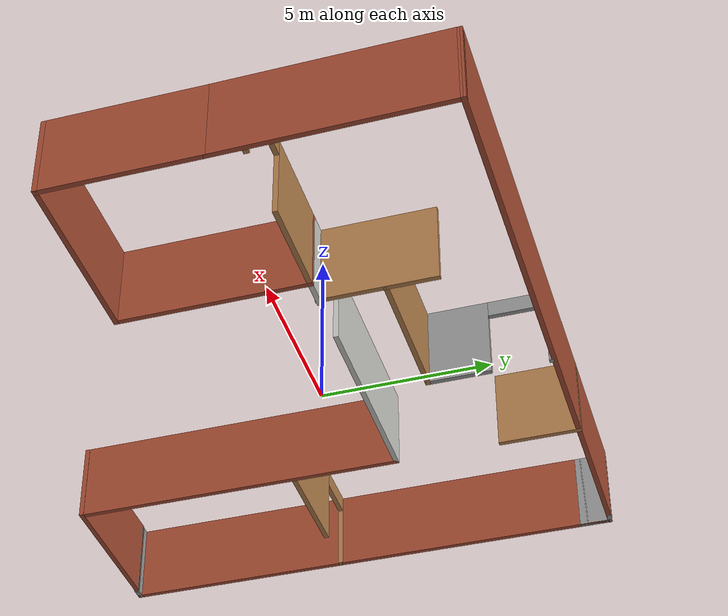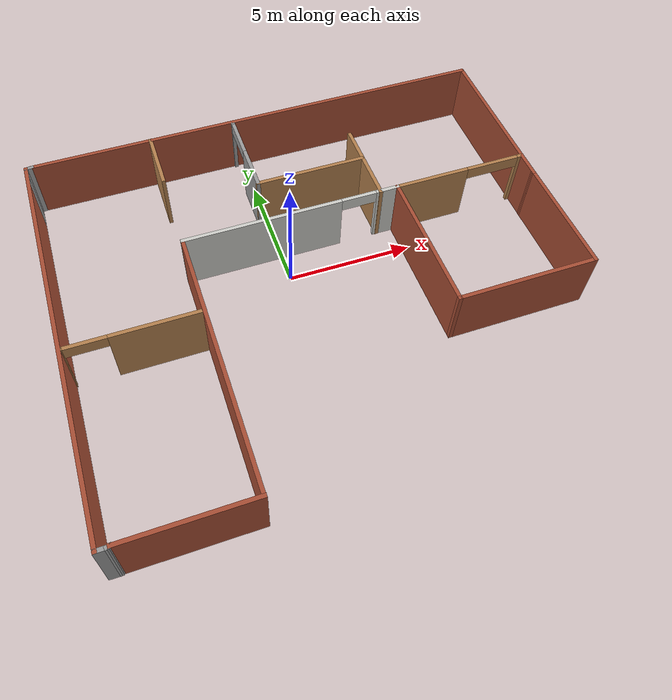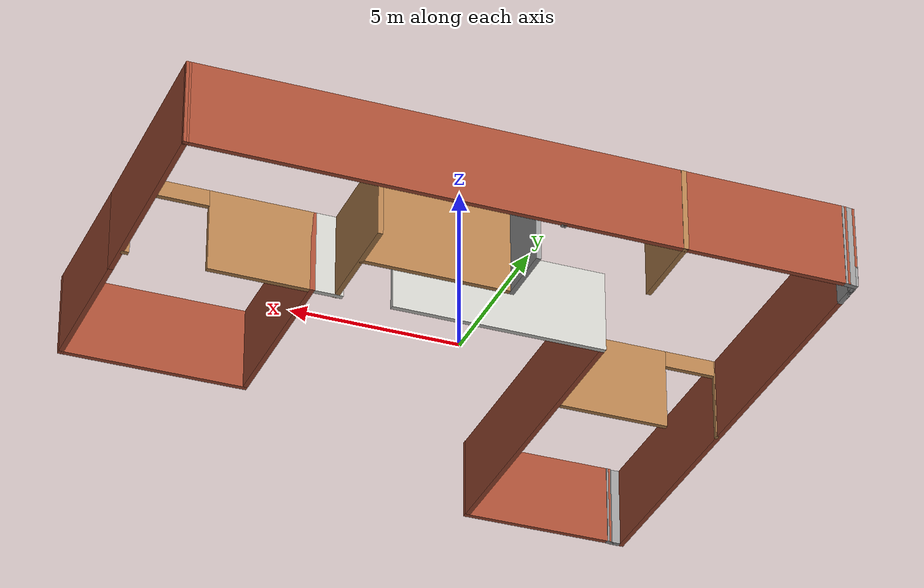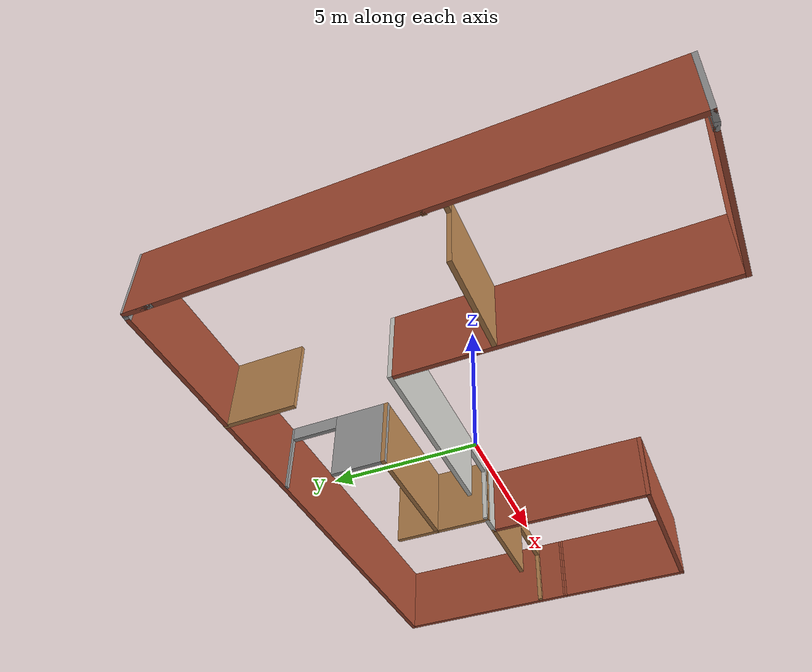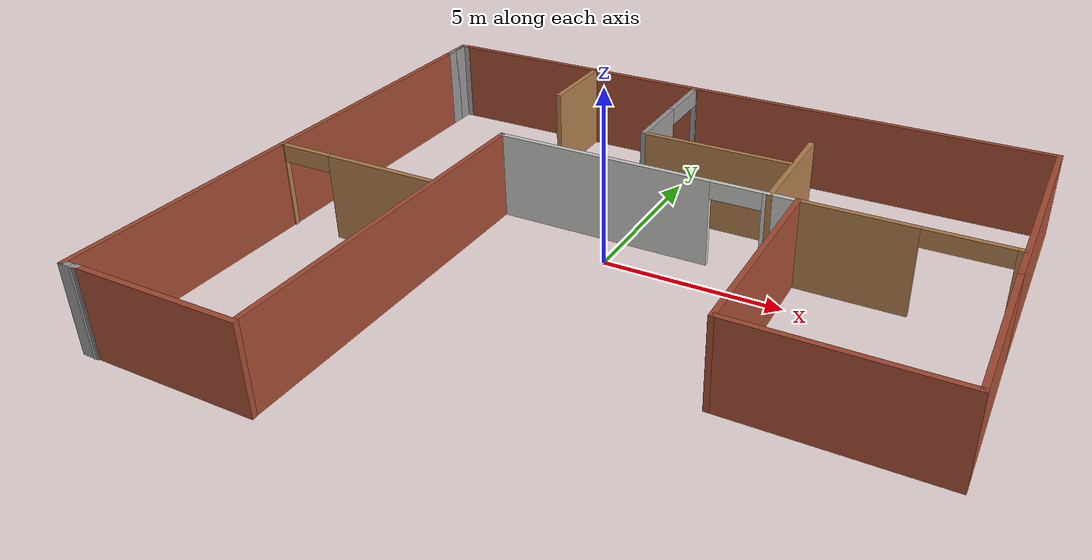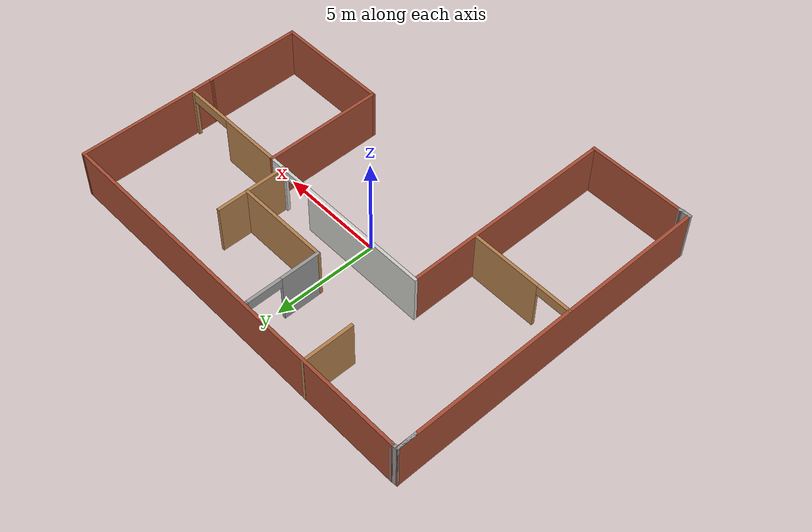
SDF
<?xml version='1.0'?>
<sdf version='1.6'>
  <model name='Building'>
    <pose frame=''>0.689658 -1.17716 0 0 -0 0</pose>
    <link name='Wall_46'>
      <collision name='Wall_46_Collision'>
        <geometry>
          <box>
            <size>19 0.15 2.5</size>
          </box>
        </geometry>
        <pose frame=''>0 0 1.25 0 -0 0</pose>
      </collision>
      <visual name='Wall_46_Visual'>
        <pose frame=''>0 0 1.25 0 -0 0</pose>
        <geometry>
          <box>
            <size>19 0.15 2.5</size>
          </box>
        </geometry>
        <material>
          <script>
            <uri>file://media/materials/scripts/gazebo.material</uri>
            <name>Gazebo/Bricks</name>
          </script>
          <ambient>1 1 1 1</ambient>
        </material>
        <meta>
          <layer>0</layer>
        </meta>
      </visual>
      <pose frame=''>0.126715 7.94172 0 0 -0 0</pose>
    </link>
    <link name='Wall_48'>
      <collision name='Wall_48_Collision'>
        <geometry>
          <box>
            <size>6.75 0.15 2.5</size>
          </box>
        </geometry>
        <pose frame=''>0 0 1.25 0 -0 0</pose>
      </collision>
      <visual name='Wall_48_Visual'>
        <pose frame=''>0 0 1.25 0 -0 0</pose>
        <geometry>
          <box>
            <size>6.75 0.15 2.5</size>
          </box>
        </geometry>
        <material>
          <script>
            <uri>file://media/materials/scripts/gazebo.material</uri>
            <name>Gazebo/Bricks</name>
          </script>
          <ambient>1 1 1 1</ambient>
        </material>
        <meta>
          <layer>0</layer>
        </meta>
      </visual>
      <pose frame=''>9.52607 4.64172 0 0 0 -1.57857</pose>
    </link>
    <link name='Wall_57'>
      <collision name='Wall_57_Collision'>
        <geometry>
          <box>
            <size>4.75 0.15 2.5</size>
          </box>
        </geometry>
        <pose frame=''>0 0 1.25 0 -0 0</pose>
      </collision>
      <visual name='Wall_57_Visual'>
        <pose frame=''>0 0 1.25 0 -0 0</pose>
        <geometry>
          <box>
            <size>4.75 0.15 2.5</size>
          </box>
        </geometry>
        <material>
          <script>
            <uri>file://media/materials/scripts/gazebo.material</uri>
            <name>Gazebo/Bricks</name>
          </script>
          <ambient>1 1 1 1</ambient>
        </material>
        <meta>
          <layer>0</layer>
        </meta>
      </visual>
      <pose frame=''>-6.79828 -7.90828 0 0 -0 3.14159</pose>
    </link>
    <link name='Wall_58'>
      <collision name='Wall_58_Collision'>
        <geometry>
          <box>
            <size>0.25 0.15 2.5</size>
          </box>
        </geometry>
        <pose frame=''>0 0 1.25 0 -0 0</pose>
      </collision>
      <visual name='Wall_58_Visual'>
        <pose frame=''>0 0 1.25 0 -0 0</pose>
        <geometry>
          <box>
            <size>0.25 0.15 2.5</size>
          </box>
        </geometry>
        <material>
          <script>
            <uri>file://media/materials/scripts/gazebo.material</uri>
            <name>Gazebo/Grey</name>
          </script>
          <ambient>1 1 1 1</ambient>
        </material>
        <meta>
          <layer>0</layer>
        </meta>
      </visual>
      <pose frame=''>-9.14658 -7.92122 0 0 0 -2.87979</pose>
    </link>
    <link name='Wall_59'>
      <collision name='Wall_59_Collision'>
        <geometry>
          <box>
            <size>0.5 0.15 2.5</size>
          </box>
        </geometry>
        <pose frame=''>0 0 1.25 0 -0 0</pose>
      </collision>
      <visual name='Wall_59_Visual'>
        <pose frame=''>0 0 1.25 0 -0 0</pose>
        <geometry>
          <box>
            <size>0.5 0.15 2.5</size>
          </box>
        </geometry>
        <material>
          <script>
            <uri>file://media/materials/scripts/gazebo.material</uri>
            <name>Gazebo/Grey</name>
          </script>
          <ambient>1 1 1 1</ambient>
        </material>
        <meta>
          <layer>0</layer>
        </meta>
      </visual>
      <pose frame=''>-9.36988 -7.93416 0 0 -0 3.14159</pose>
    </link>
    <link name='Wall_60'>
      <collision name='Wall_60_Collision'>
        <geometry>
          <box>
            <size>16 0.15 2.5</size>
          </box>
        </geometry>
        <pose frame=''>0 0 1.25 0 -0 0</pose>
      </collision>
      <visual name='Wall_60_Visual'>
        <pose frame=''>0 0 1.25 0 -0 0</pose>
        <geometry>
          <box>
            <size>16 0.15 2.5</size>
          </box>
        </geometry>
        <material>
          <script>
            <uri>file://media/materials/scripts/gazebo.material</uri>
            <name>Gazebo/Bricks</name>
          </script>
          <ambient>1 1 1 1</ambient>
        </material>
        <meta>
          <layer>0</layer>
        </meta>
      </visual>
      <pose frame=''>-9.54488 -0.009158 0 0 -0 1.5708</pose>
    </link>
    <link name='Wall_62'>
      <collision name='Wall_62_Collision'>
        <geometry>
          <box>
            <size>0.397947 0.15 2.5</size>
          </box>
        </geometry>
        <pose frame=''>0 0 1.25 0 -0 0</pose>
      </collision>
      <visual name='Wall_62_Visual'>
        <pose frame=''>0 0 1.25 0 -0 0</pose>
        <geometry>
          <box>
            <size>0.397947 0.15 2.5</size>
          </box>
        </geometry>
        <material>
          <script>
            <uri>file://media/materials/scripts/gazebo.material</uri>
            <name>Gazebo/Grey</name>
          </script>
          <ambient>1 1 1 1</ambient>
        </material>
        <meta>
          <layer>0</layer>
        </meta>
      </visual>
      <pose frame=''>-9.42158 7.92878 0 0 0 -3.03702</pose>
    </link>
    <link name='Wall_63'>
      <collision name='Wall_63_Collision'>
        <geometry>
          <box>
            <size>1 0.15 2.5</size>
          </box>
        </geometry>
        <pose frame=''>0 0 1.25 0 -0 0</pose>
      </collision>
      <visual name='Wall_63_Visual'>
        <pose frame=''>0 0 1.25 0 -0 0</pose>
        <geometry>
          <box>
            <size>1 0.15 2.5</size>
          </box>
        </geometry>
        <material>
          <script>
            <uri>file://media/materials/scripts/gazebo.material</uri>
            <name>Gazebo/Grey</name>
          </script>
          <ambient>1 1 1 1</ambient>
        </material>
        <meta>
          <layer>0</layer>
        </meta>
      </visual>
      <pose frame=''>-9.54488 7.49084 0 0 0 -1.5708</pose>
    </link>
    <link name='Wall_64'>
      <collision name='Wall_64_Collision'>
        <geometry>
          <box>
            <size>1 0.15 2.5</size>
          </box>
        </geometry>
        <pose frame=''>0 0 1.25 0 -0 0</pose>
      </collision>
      <visual name='Wall_64_Visual'>
        <pose frame=''>0 0 1.25 0 -0 0</pose>
        <geometry>
          <box>
            <size>1 0.15 2.5</size>
          </box>
        </geometry>
        <material>
          <script>
            <uri>file://media/materials/scripts/gazebo.material</uri>
            <name>Gazebo/Grey</name>
          </script>
          <ambient>1 1 1 1</ambient>
        </material>
        <meta>
          <layer>0</layer>
        </meta>
      </visual>
      <pose frame=''>-9.54488 7.49084 0 0 -0 1.5708</pose>
    </link>
    <link name='Wall_66'>
      <collision name='Wall_66_Collision'>
        <geometry>
          <box>
            <size>4.75 0.15 2.5</size>
          </box>
        </geometry>
        <pose frame=''>0 0 1.25 0 -0 0</pose>
      </collision>
      <visual name='Wall_66_Visual'>
        <pose frame=''>0 0 1.25 0 -0 0</pose>
        <geometry>
          <box>
            <size>4.75 0.15 2.5</size>
          </box>
        </geometry>
        <material>
          <script>
            <uri>file://media/materials/scripts/gazebo.material</uri>
            <name>Gazebo/Bricks</name>
          </script>
          <ambient>1 1 1 1</ambient>
        </material>
        <meta>
          <layer>0</layer>
        </meta>
      </visual>
      <pose frame=''>9.50042 -0.958277 0 0 0 -1.5708</pose>
    </link>
    <link name='Wall_67'>
      <collision name='Wall_67_Collision'>
        <geometry>
          <box>
            <size>5.55818 0.15 2.5</size>
          </box>
        </geometry>
        <pose frame=''>0 0 1.25 0 -0 0</pose>
      </collision>
      <visual name='Wall_67_Visual'>
        <pose frame=''>0 0 1.25 0 -0 0</pose>
        <geometry>
          <box>
            <size>5.55818 0.15 2.5</size>
          </box>
        </geometry>
        <material>
          <script>
            <uri>file://media/materials/scripts/gazebo.material</uri>
            <name>Gazebo/Bricks</name>
          </script>
          <ambient>1 1 1 1</ambient>
        </material>
        <meta>
          <layer>0</layer>
        </meta>
      </visual>
      <pose frame=''>6.79633 -3.25828 0 0 -0 3.14159</pose>
    </link>
    <link name='Wall_73'>
      <collision name='Wall_73_Collision'>
        <geometry>
          <box>
            <size>5.75 0.15 2.5</size>
          </box>
        </geometry>
        <pose frame=''>0 0 1.25 0 -0 0</pose>
      </collision>
      <visual name='Wall_73_Visual'>
        <pose frame=''>0 0 1.25 0 -0 0</pose>
        <geometry>
          <box>
            <size>5.75 0.15 2.5</size>
          </box>
        </geometry>
        <material>
          <script>
            <uri>file://media/materials/scripts/gazebo.material</uri>
            <name>Gazebo/Bricks</name>
          </script>
          <ambient>1 1 1 1</ambient>
        </material>
        <meta>
          <layer>0</layer>
        </meta>
      </visual>
      <pose frame=''>4.09224 -0.458277 0 0 -0 1.5708</pose>
    </link>
    <link name='Wall_74'>
      <pose frame=''>-0.207759 2.34172 0 0 -0 3.14159</pose>
      <visual name='Wall_74_Visual_0'>
        <pose frame=''>-3.88634 0 1.25 0 -0 0</pose>
        <geometry>
          <box>
            <size>0.977324 0.15 2.5</size>
          </box>
        </geometry>
        <material>
          <script>
            <uri>file://media/materials/scripts/gazebo.material</uri>
            <name>Gazebo/CeilingTiled</name>
          </script>
          <ambient>1 1 1 1</ambient>
        </material>
        <meta>
          <layer>0</layer>
        </meta>
      </visual>
      <collision name='Wall_74_Collision_0'>
        <geometry>
          <box>
            <size>0.977324 0.15 2.5</size>
          </box>
        </geometry>
        <pose frame=''>-3.88634 0 1.25 0 -0 0</pose>
      </collision>
      <visual name='Wall_74_Visual_1'>
        <pose frame=''>1.19711 0 1.25 0 -0 0</pose>
        <geometry>
          <box>
            <size>6.35579 0.15 2.5</size>
          </box>
        </geometry>
        <material>
          <script>
            <uri>file://media/materials/scripts/gazebo.material</uri>
            <name>Gazebo/CeilingTiled</name>
          </script>
          <ambient>1 1 1 1</ambient>
        </material>
        <meta>
          <layer>0</layer>
        </meta>
      </visual>
      <collision name='Wall_74_Collision_1'>
        <geometry>
          <box>
            <size>6.35579 0.15 2.5</size>
          </box>
        </geometry>
        <pose frame=''>1.19711 0 1.25 0 -0 0</pose>
      </collision>
      <visual name='Wall_74_Visual_2'>
        <pose frame=''>-2.68923 0 2.25 0 -0 0</pose>
        <geometry>
          <box>
            <size>1.41689 0.15 0.5</size>
          </box>
        </geometry>
        <material>
          <script>
            <uri>file://media/materials/scripts/gazebo.material</uri>
            <name>Gazebo/CeilingTiled</name>
          </script>
          <ambient>1 1 1 1</ambient>
        </material>
        <meta>
          <layer>0</layer>
        </meta>
      </visual>
      <collision name='Wall_74_Collision_2'>
        <geometry>
          <box>
            <size>1.41689 0.15 0.5</size>
          </box>
        </geometry>
        <pose frame=''>-2.68923 0 2.25 0 -0 0</pose>
      </collision>
    </link>
    <link name='Wall_75'>
      <collision name='Wall_75_Collision'>
        <geometry>
          <box>
            <size>10.25 0.15 2.5</size>
          </box>
        </geometry>
        <pose frame=''>0 0 1.25 0 -0 0</pose>
      </collision>
      <visual name='Wall_75_Visual'>
        <pose frame=''>0 0 1.25 0 -0 0</pose>
        <geometry>
          <box>
            <size>10.25 0.15 2.5</size>
          </box>
        </geometry>
        <material>
          <script>
            <uri>file://media/materials/scripts/gazebo.material</uri>
            <name>Gazebo/Bricks</name>
          </script>
          <ambient>1 1 1 1</ambient>
        </material>
        <meta>
          <layer>0</layer>
        </meta>
      </visual>
      <pose frame=''>-4.50776 -2.70828 0 0 0 -1.5708</pose>
    </link>
    <link name='Wall_77'>
      <pose frame=''>6.76724 2.34172 0 0 -0 0</pose>
      <visual name='Wall_77_Visual_0'>
        <pose frame=''>-1.2065 0 1.25 0 -0 0</pose>
        <geometry>
          <box>
            <size>3.08701 0.15 2.5</size>
          </box>
        </geometry>
        <material>
          <script>
            <uri>file://media/materials/scripts/gazebo.material</uri>
            <name>Gazebo/Wood</name>
          </script>
          <ambient>1 1 1 1</ambient>
        </material>
        <meta>
          <layer>0</layer>
        </meta>
      </visual>
      <collision name='Wall_77_Collision_0'>
        <geometry>
          <box>
            <size>3.08701 0.15 2.5</size>
          </box>
        </geometry>
        <pose frame=''>-1.2065 0 1.25 0 -0 0</pose>
      </collision>
      <visual name='Wall_77_Visual_1'>
        <pose frame=''>2.63909 0 1.25 0 -0 0</pose>
        <geometry>
          <box>
            <size>0.221822 0.15 2.5</size>
          </box>
        </geometry>
        <material>
          <script>
            <uri>file://media/materials/scripts/gazebo.material</uri>
            <name>Gazebo/Wood</name>
          </script>
          <ambient>1 1 1 1</ambient>
        </material>
        <meta>
          <layer>0</layer>
        </meta>
      </visual>
      <collision name='Wall_77_Collision_1'>
        <geometry>
          <box>
            <size>0.221822 0.15 2.5</size>
          </box>
        </geometry>
        <pose frame=''>2.63909 0 1.25 0 -0 0</pose>
      </collision>
      <visual name='Wall_77_Visual_2'>
        <pose frame=''>1.43259 0 2.25 0 -0 0</pose>
        <geometry>
          <box>
            <size>2.19117 0.15 0.5</size>
          </box>
        </geometry>
        <material>
          <script>
            <uri>file://media/materials/scripts/gazebo.material</uri>
            <name>Gazebo/Wood</name>
          </script>
          <ambient>1 1 1 1</ambient>
        </material>
        <meta>
          <layer>0</layer>
        </meta>
      </visual>
      <collision name='Wall_77_Collision_2'>
        <geometry>
          <box>
            <size>2.19117 0.15 0.5</size>
          </box>
        </geometry>
        <pose frame=''>1.43259 0 2.25 0 -0 0</pose>
      </collision>
    </link>
    <link name='Wall_85'>
      <collision name='Wall_85_Collision'>
        <geometry>
          <box>
            <size>4.5 0.15 2.5</size>
          </box>
        </geometry>
        <pose frame=''>0 0 1.25 0 -0 0</pose>
      </collision>
      <visual name='Wall_85_Visual'>
        <pose frame=''>0 0 1.25 0 -0 0</pose>
        <geometry>
          <box>
            <size>4.5 0.15 2.5</size>
          </box>
        </geometry>
        <material>
          <script>
            <uri>file://media/materials/scripts/gazebo.material</uri>
            <name>Gazebo/Wood</name>
          </script>
          <ambient>1 1 1 1</ambient>
        </material>
        <meta>
          <layer>0</layer>
        </meta>
      </visual>
      <pose frame=''>1.15991 4.24748 0 0 -0 3.14159</pose>
    </link>
    <link name='Wall_87'>
      <pose frame=''>-1.01509 6.04748 0 0 -0 1.5708</pose>
      <visual name='Wall_87_Visual_0'>
        <pose frame=''>-0.896465 0 1.25 0 -0 0</pose>
        <geometry>
          <box>
            <size>1.95707 0.15 2.5</size>
          </box>
        </geometry>
        <material>
          <script>
            <uri>file://media/materials/scripts/gazebo.material</uri>
            <name>Gazebo/Grey</name>
          </script>
          <ambient>1 1 1 1</ambient>
        </material>
        <meta>
          <layer>0</layer>
        </meta>
      </visual>
      <collision name='Wall_87_Collision_0'>
        <geometry>
          <box>
            <size>1.95707 0.15 2.5</size>
          </box>
        </geometry>
        <pose frame=''>-0.896465 0 1.25 0 -0 0</pose>
      </collision>
      <visual name='Wall_87_Visual_1'>
        <pose frame=''>1.8098 0 1.25 0 -0 0</pose>
        <geometry>
          <box>
            <size>0.130398 0.15 2.5</size>
          </box>
        </geometry>
        <material>
          <script>
            <uri>file://media/materials/scripts/gazebo.material</uri>
            <name>Gazebo/Grey</name>
          </script>
          <ambient>1 1 1 1</ambient>
        </material>
        <meta>
          <layer>0</layer>
        </meta>
      </visual>
      <collision name='Wall_87_Collision_1'>
        <geometry>
          <box>
            <size>0.130398 0.15 2.5</size>
          </box>
        </geometry>
        <pose frame=''>1.8098 0 1.25 0 -0 0</pose>
      </collision>
      <visual name='Wall_87_Visual_2'>
        <pose frame=''>0.913336 0 2.25 0 -0 0</pose>
        <geometry>
          <box>
            <size>1.66253 0.15 0.5</size>
          </box>
        </geometry>
        <material>
          <script>
            <uri>file://media/materials/scripts/gazebo.material</uri>
            <name>Gazebo/Grey</name>
          </script>
          <ambient>1 1 1 1</ambient>
        </material>
        <meta>
          <layer>0</layer>
        </meta>
      </visual>
      <collision name='Wall_87_Collision_2'>
        <geometry>
          <box>
            <size>1.66253 0.15 0.5</size>
          </box>
        </geometry>
        <pose frame=''>0.913336 0 2.25 0 -0 0</pose>
      </collision>
    </link>
    <link name='Wall_90'>
      <collision name='Wall_90_Collision'>
        <geometry>
          <box>
            <size>3.5 0.15 2.5</size>
          </box>
        </geometry>
        <pose frame=''>0 0 1.25 0 -0 0</pose>
      </collision>
      <visual name='Wall_90_Visual'>
        <pose frame=''>0 0 1.25 0 -0 0</pose>
        <geometry>
          <box>
            <size>3.5 0.15 2.5</size>
          </box>
        </geometry>
        <material>
          <script>
            <uri>file://media/materials/scripts/gazebo.material</uri>
            <name>Gazebo/Wood</name>
          </script>
          <ambient>1 1 1 1</ambient>
        </material>
        <meta>
          <layer>0</layer>
        </meta>
      </visual>
      <pose frame=''>3.37525 4.0029 0 0 0 -1.5708</pose>
    </link>
    <link name='Wall_92'>
      <collision name='Wall_92_Collision'>
        <geometry>
          <box>
            <size>2.5 0.15 2.5</size>
          </box>
        </geometry>
        <pose frame=''>0 0 1.25 0 -0 0</pose>
      </collision>
      <visual name='Wall_92_Visual'>
        <pose frame=''>0 0 1.25 0 -0 0</pose>
        <geometry>
          <box>
            <size>2.5 0.15 2.5</size>
          </box>
        </geometry>
        <material>
          <script>
            <uri>file://media/materials/scripts/gazebo.material</uri>
            <name>Gazebo/Wood</name>
          </script>
          <ambient>1 1 1 1</ambient>
        </material>
        <meta>
          <layer>0</layer>
        </meta>
      </visual>
      <pose frame=''>-4.49568 6.77601 0 0 0 -1.5708</pose>
    </link>
    <link name='Wall_96'>
      <pose frame=''>-7.08443 -0.919722 0 0 -0 0</pose>
      <visual name='Wall_96_Visual_0'>
        <pose frame=''>-2.426 0 1.25 0 -0 0</pose>
        <geometry>
          <box>
            <size>0.147992 0.15 2.5</size>
          </box>
        </geometry>
        <material>
          <script>
            <uri>file://media/materials/scripts/gazebo.material</uri>
            <name>Gazebo/Wood</name>
          </script>
          <ambient>1 1 1 1</ambient>
        </material>
        <meta>
          <layer>0</layer>
        </meta>
      </visual>
      <collision name='Wall_96_Collision_0'>
        <geometry>
          <box>
            <size>0.147992 0.15 2.5</size>
          </box>
        </geometry>
        <pose frame=''>-2.426 0 1.25 0 -0 0</pose>
      </collision>
      <visual name='Wall_96_Visual_1'>
        <pose frame=''>0.84278 0 1.25 0 -0 0</pose>
        <geometry>
          <box>
            <size>3.31444 0.15 2.5</size>
          </box>
        </geometry>
        <material>
          <script>
            <uri>file://media/materials/scripts/gazebo.material</uri>
            <name>Gazebo/Wood</name>
          </script>
          <ambient>1 1 1 1</ambient>
        </material>
        <meta>
          <layer>0</layer>
        </meta>
      </visual>
      <collision name='Wall_96_Collision_1'>
        <geometry>
          <box>
            <size>3.31444 0.15 2.5</size>
          </box>
        </geometry>
        <pose frame=''>0.84278 0 1.25 0 -0 0</pose>
      </collision>
      <visual name='Wall_96_Visual_2'>
        <pose frame=''>-1.58322 0 2.25 0 -0 0</pose>
        <geometry>
          <box>
            <size>1.53757 0.15 0.5</size>
          </box>
        </geometry>
        <material>
          <script>
            <uri>file://media/materials/scripts/gazebo.material</uri>
            <name>Gazebo/Wood</name>
          </script>
          <ambient>1 1 1 1</ambient>
        </material>
        <meta>
          <layer>0</layer>
        </meta>
      </visual>
      <collision name='Wall_96_Collision_2'>
        <geometry>
          <box>
            <size>1.53757 0.15 0.5</size>
          </box>
        </geometry>
        <pose frame=''>-1.58322 0 2.25 0 -0 0</pose>
      </collision>
    </link>
    <static>1</static>
  </model>
</sdf>
